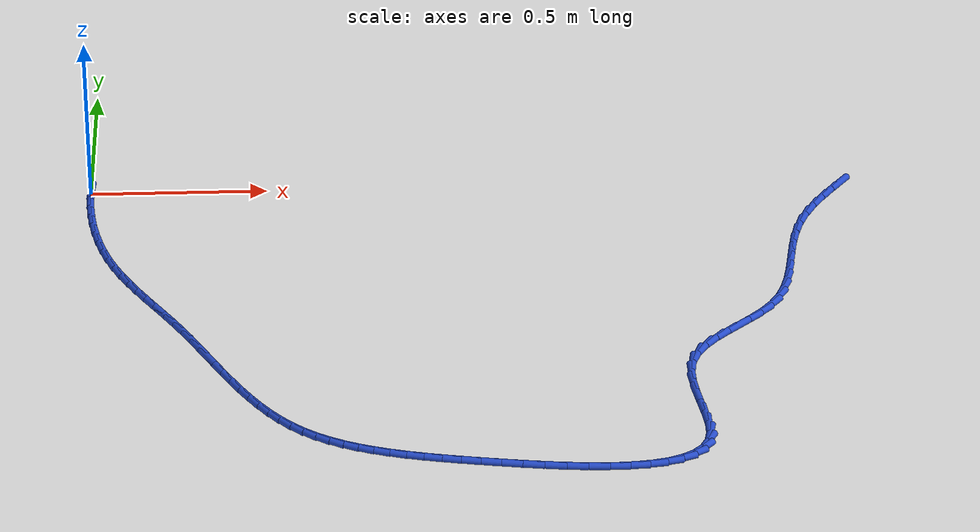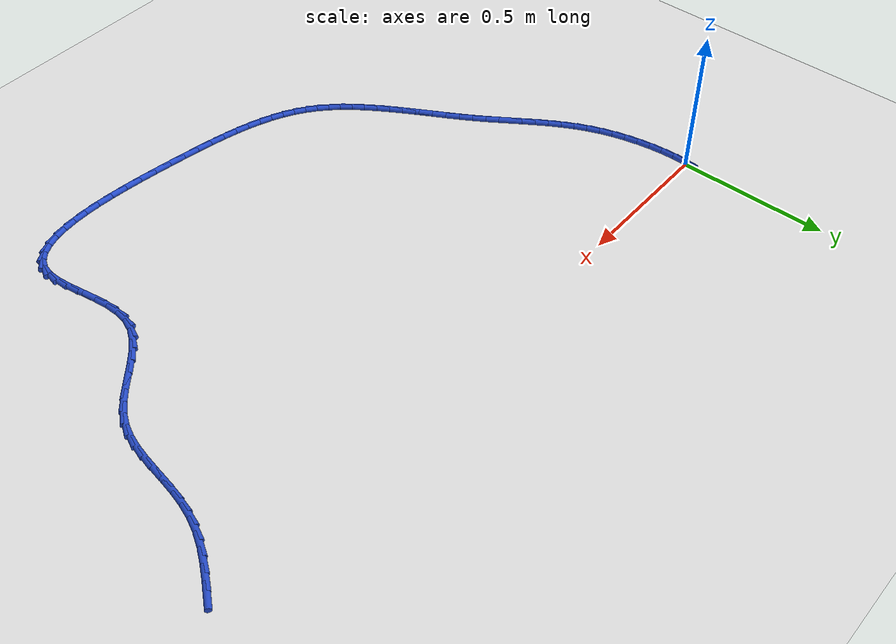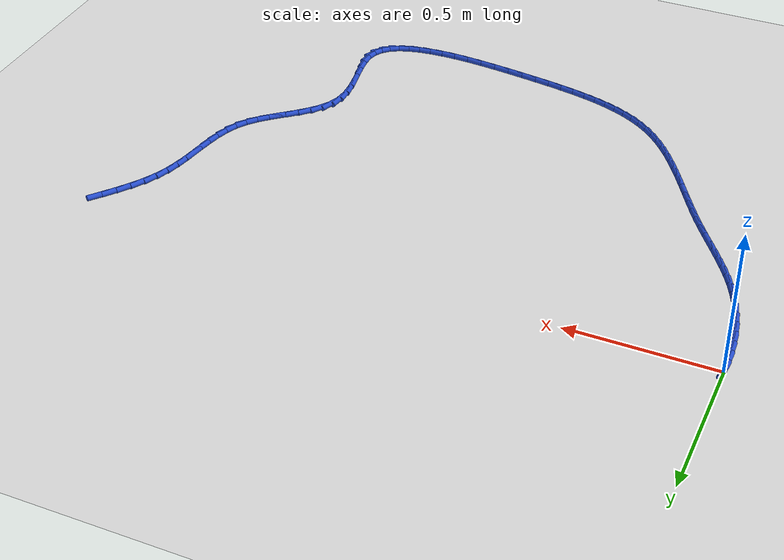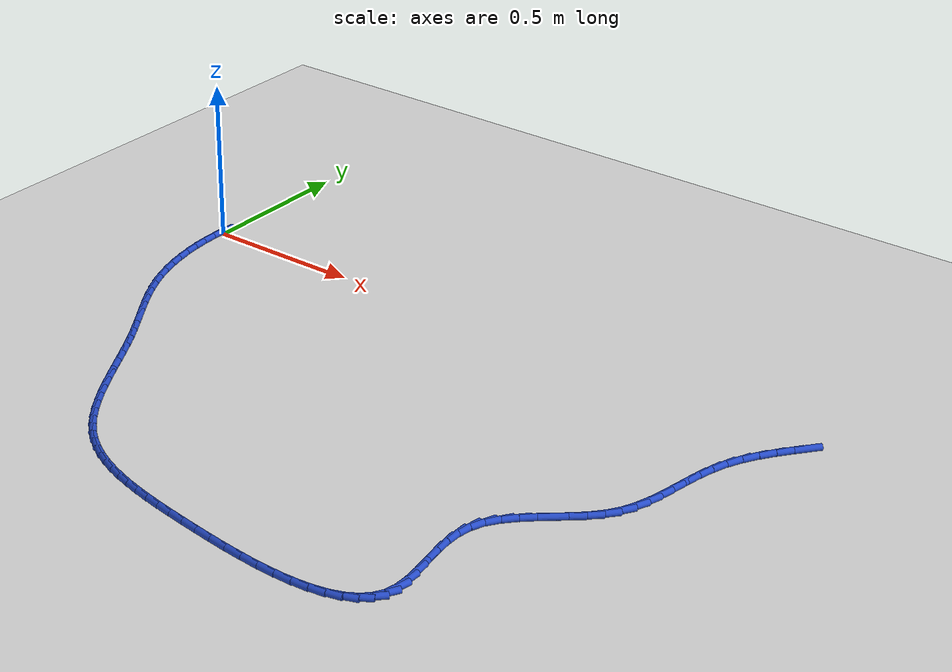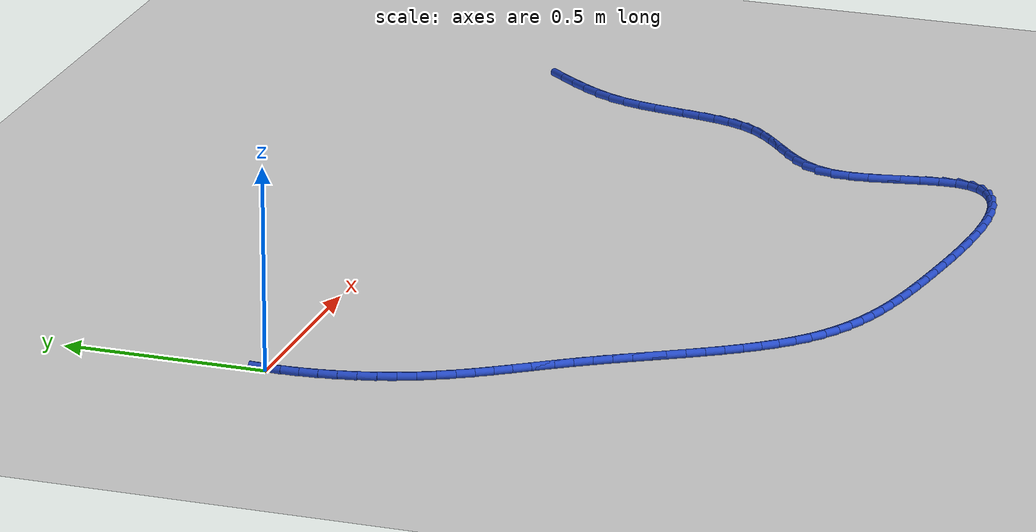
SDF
<sdf version="1.6">
 <world name="default">
  <model name="ground_plane">
   <static>1</static>
   <link name="link">
    <collision name="collision">
     <geometry><plane><normal>0 0 1</normal><size>100 100</size></plane></geometry>
     <surface><friction><ode><mu>100</mu><mu2>50</mu2></ode></friction></surface>
    </collision>
    <visual name="visual">
     <cast_shadows>0</cast_shadows>
     <geometry><plane><normal>0 0 1</normal><size>100 100</size></plane></geometry>
     <material>
      <script><uri>file://media/materials/scripts/gazebo.material</uri><name>Gazebo/WhiteGlow</name></script>
     </material>
    </visual>
   </link>
  </model>
  <model name="line">
   <link name="link_0">
    <pose>-2.6020852139652106e-17 6.938893903907228e-17 0.01 0 1.57 1.5015367218209097</pose>
    <collision name="collision">
     <geometry><cylinder><radius>0.01</radius><length>0.08</length></cylinder></geometry>
    </collision>
    <visual name="visual">
     <material>
      <script><name>Gazebo/Blue</name><uri>file://media/materials/scripts/gazebo.material</uri></script>
     </material>
     <geometry><cylinder><radius>0.01</radius><length>0.08</length></cylinder></geometry>
    </visual>
   </link>
   <link name="link_86">
    <pose>2.1343376014340554 -0.019765236307156576 0.01 0 1.57 0.8953311883080695</pose>
    <collision name="collision">
     <geometry><cylinder><radius>0.01</radius><length>0.08</length></cylinder></geometry>
    </collision>
    <visual name="visual">
     <material>
      <script><name>Gazebo/Blue</name><uri>file://media/materials/scripts/gazebo.material</uri></script>
     </material>
     <geometry><cylinder><radius>0.01</radius><length>0.08</length></cylinder></geometry>
    </visual>
   </link>
   <link name="link_87">
    <pose>2.102696244471729 -0.059258267065705715 0.01 0 1.57 0.9284520968561958</pose>
    <collision name="collision">
     <geometry><cylinder><radius>0.01</radius><length>0.08</length></cylinder></geometry>
    </collision>
    <visual name="visual">
     <material>
      <script><name>Gazebo/Blue</name><uri>file://media/materials/scripts/gazebo.material</uri></script>
     </material>
     <geometry><cylinder><radius>0.01</radius><length>0.08</length></cylinder></geometry>
    </visual>
   </link>
   <link name="link_88">
    <pose>2.072326360410331 -0.09984919184461644 0.01 0 1.57 0.9825147290813121</pose>
    <collision name="collision">
     <geometry><cylinder><radius>0.01</radius><length>0.08</length></cylinder></geometry>
    </collision>
    <visual name="visual">
     <material>
      <script><name>Gazebo/Blue</name><uri>file://media/materials/scripts/gazebo.material</uri></script>
     </material>
     <geometry><cylinder><radius>0.01</radius><length>0.08</length></cylinder></geometry>
    </visual>
   </link>
   <link name="link_89">
    <pose>2.0445008241018092 -0.141562276583515 0.01 0 1.57 1.0601838977906153</pose>
    <collision name="collision">
     <geometry><cylinder><radius>0.01</radius><length>0.08</length></cylinder></geometry>
    </collision>
    <visual name="visual">
     <material>
      <script><name>Gazebo/Blue</name><uri>file://media/materials/scripts/gazebo.material</uri></script>
     </material>
     <geometry><cylinder><radius>0.01</radius><length>0.08</length></cylinder></geometry>
    </visual>
   </link>
   <link name="link_90">
    <pose>2.020492510398112 -0.18442178722202515 0.01 0 1.57 1.1635988617889739</pose>
    <collision name="collision">
     <geometry><cylinder><radius>0.01</radius><length>0.08</length></cylinder></geometry>
    </collision>
    <visual name="visual">
     <material>
      <script><name>Gazebo/Blue</name><uri>file://media/materials/scripts/gazebo.material</uri></script>
     </material>
     <geometry><cylinder><radius>0.01</radius><length>0.08</length></cylinder></geometry>
    </visual>
   </link>
   <link name="link_91">
    <pose>2.0015073615350767 -0.22843988006481394 0.01 0 1.57 1.2675174536357787</pose>
    <collision name="collision">
     <geometry><cylinder><radius>0.01</radius><length>0.08</length></cylinder></geometry>
    </collision>
    <visual name="visual">
     <material>
      <script><name>Gazebo/Blue</name><uri>file://media/materials/scripts/gazebo.material</uri></script>
     </material>
     <geometry><cylinder><radius>0.01</radius><length>0.08</length></cylinder></geometry>
    </visual>
   </link>
   <link name="link_92">
    <pose>1.9874405190904356 -0.2733915577178625 0.01 0 1.57 1.3448038288837534</pose>
    <collision name="collision">
     <geometry><cylinder><radius>0.01</radius><length>0.08</length></cylinder></geometry>
    </collision>
    <visual name="visual">
     <material>
      <script><name>Gazebo/Blue</name><uri>file://media/materials/scripts/gazebo.material</uri></script>
     </material>
     <geometry><cylinder><radius>0.01</radius><length>0.08</length></cylinder></geometry>
    </visual>
   </link>
   <link name="link_93">
    <pose>1.976992020223422 -0.31883560117373483 0.01 0 1.57 1.3929985538239018</pose>
    <collision name="collision">
     <geometry><cylinder><radius>0.01</radius><length>0.08</length></cylinder></geometry>
    </collision>
    <visual name="visual">
     <material>
      <script><name>Gazebo/Blue</name><uri>file://media/materials/scripts/gazebo.material</uri></script>
     </material>
     <geometry><cylinder><radius>0.01</radius><length>0.08</length></cylinder></geometry>
    </visual>
   </link>
   <link name="link_94">
    <pose>1.9688181706790948 -0.3643228794159841 0.01 0 1.57 1.4114950180663197</pose>
    <collision name="collision">
     <geometry><cylinder><radius>0.01</radius><length>0.08</length></cylinder></geometry>
    </collision>
    <visual name="visual">
     <material>
      <script><name>Gazebo/Blue</name><uri>file://media/materials/scripts/gazebo.material</uri></script>
     </material>
     <geometry><cylinder><radius>0.01</radius><length>0.08</length></cylinder></geometry>
    </visual>
   </link>
   <link name="link_95">
    <pose>1.9615752762025158 -0.40940426142816094 0.01 0 1.57 1.3993936607827153</pose>
    <collision name="collision">
     <geometry><cylinder><radius>0.01</radius><length>0.08</length></cylinder></geometry>
    </collision>
    <visual name="visual">
     <material>
      <script><name>Gazebo/Blue</name><uri>file://media/materials/scripts/gazebo.material</uri></script>
     </material>
     <geometry><cylinder><radius>0.01</radius><length>0.08</length></cylinder></geometry>
    </visual>
   </link>
   <link name="link_96">
    <pose>1.9539196425387455 -0.45363061619381856 0.01 0 1.57 1.3549309332881538</pose>
    <collision name="collision">
     <geometry><cylinder><radius>0.01</radius><length>0.08</length></cylinder></geometry>
    </collision>
    <visual name="visual">
     <material>
      <script><name>Gazebo/Blue</name><uri>file://media/materials/scripts/gazebo.material</uri></script>
     </material>
     <geometry><cylinder><radius>0.01</radius><length>0.08</length></cylinder></geometry>
    </visual>
   </link>
   <link name="link_97">
    <pose>1.944507575432843 -0.4965528126965091 0.01 0 1.57 1.2757439687613161</pose>
    <collision name="collision">
     <geometry><cylinder><radius>0.01</radius><length>0.08</length></cylinder></geometry>
    </collision>
    <visual name="visual">
     <material>
      <script><name>Gazebo/Blue</name><uri>file://media/materials/scripts/gazebo.material</uri></script>
     </material>
     <geometry><cylinder><radius>0.01</radius><length>0.08</length></cylinder></geometry>
    </visual>
   </link>
   <link name="link_98">
    <pose>1.9319953806298693 -0.5377217199197849 0.01 0 1.57 1.1603654402708465</pose>
    <collision name="collision">
     <geometry><cylinder><radius>0.01</radius><length>0.08</length></cylinder></geometry>
    </collision>
    <visual name="visual">
     <material>
      <script><name>Gazebo/Blue</name><uri>file://media/materials/scripts/gazebo.material</uri></script>
     </material>
     <geometry><cylinder><radius>0.01</radius><length>0.08</length></cylinder></geometry>
    </visual>
   </link>
   <link name="link_99">
    <pose>1.9150393638748846 -0.576688206847199 0.01 0 1.57 1.011336479502829</pose>
    <collision name="collision">
     <geometry><cylinder><radius>0.01</radius><length>0.08</length></cylinder></geometry>
    </collision>
    <visual name="visual">
     <material>
      <script><name>Gazebo/Blue</name><uri>file://media/materials/scripts/gazebo.material</uri></script>
     </material>
     <geometry><cylinder><radius>0.01</radius><length>0.08</length></cylinder></geometry>
    </visual>
   </link>
   <link name="link_100">
    <pose>1.8922984054253866 -0.6130041693543725 0.01 0 1.57 0.8590803211666804</pose>
    <collision name="collision">
     <geometry><cylinder><radius>0.01</radius><length>0.08</length></cylinder></geometry>
    </collision>
    <visual name="visual">
     <material>
      <script><name>Gazebo/Blue</name><uri>file://media/materials/scripts/gazebo.material</uri></script>
     </material>
     <geometry><cylinder><radius>0.01</radius><length>0.08</length></cylinder></geometry>
    </visual>
   </link>
   <link name="link_101">
    <pose>1.863336505899754 -0.6465825273725457 0.01 0 1.57 0.7586334285078412</pose>
    <collision name="collision">
     <geometry><cylinder><radius>0.01</radius><length>0.08</length></cylinder></geometry>
    </collision>
    <visual name="visual">
     <material>
      <script><name>Gazebo/Blue</name><uri>file://media/materials/scripts/gazebo.material</uri></script>
     </material>
     <geometry><cylinder><radius>0.01</radius><length>0.08</length></cylinder></geometry>
    </visual>
   </link>
   <link name="link_102">
    <pose>1.829951072047174 -0.6782270363218417 0.01 0 1.57 0.7097951012265357</pose>
    <collision name="collision">
     <geometry><cylinder><radius>0.01</radius><length>0.08</length></cylinder></geometry>
    </collision>
    <visual name="visual">
     <material>
      <script><name>Gazebo/Blue</name><uri>file://media/materials/scripts/gazebo.material</uri></script>
     </material>
     <geometry><cylinder><radius>0.01</radius><length>0.08</length></cylinder></geometry>
    </visual>
   </link>
   <link name="link_103">
    <pose>1.794277914717638 -0.7088764303790102 0.01 0 1.57 0.7067859229128425</pose>
    <collision name="collision">
     <geometry><cylinder><radius>0.01</radius><length>0.08</length></cylinder></geometry>
    </collision>
    <visual name="visual">
     <material>
      <script><name>Gazebo/Blue</name><uri>file://media/materials/scripts/gazebo.material</uri></script>
     </material>
     <geometry><cylinder><radius>0.01</radius><length>0.08</length></cylinder></geometry>
    </visual>
   </link>
   <link name="link_104">
    <pose>1.7584528447611365 -0.7394694437208021 0.01 0 1.57 0.7491933796678254</pose>
    <collision name="collision">
     <geometry><cylinder><radius>0.01</radius><length>0.08</length></cylinder></geometry>
    </collision>
    <visual name="visual">
     <material>
      <script><name>Gazebo/Blue</name><uri>file://media/materials/scripts/gazebo.material</uri></script>
     </material>
     <geometry><cylinder><radius>0.01</radius><length>0.08</length></cylinder></geometry>
    </visual>
   </link>
   <link name="link_105">
    <pose>1.724611673027663 -0.7709448105239666 0.01 0 1.57 0.8420671908961838</pose>
    <collision name="collision">
     <geometry><cylinder><radius>0.01</radius><length>0.08</length></cylinder></geometry>
    </collision>
    <visual name="visual">
     <material>
      <script><name>Gazebo/Blue</name><uri>file://media/materials/scripts/gazebo.material</uri></script>
     </material>
     <geometry><cylinder><radius>0.01</radius><length>0.08</length></cylinder></geometry>
    </visual>
   </link>
   <link name="link_106">
    <pose>1.6948902103672083 -0.8042412649652545 0.01 0 1.57 0.9938488267173299</pose>
    <collision name="collision">
     <geometry><cylinder><radius>0.01</radius><length>0.08</length></cylinder></geometry>
    </collision>
    <visual name="visual">
     <material>
      <script><name>Gazebo/Blue</name><uri>file://media/materials/scripts/gazebo.material</uri></script>
     </material>
     <geometry><cylinder><radius>0.01</radius><length>0.08</length></cylinder></geometry>
    </visual>
   </link>
   <link name="link_107">
    <pose>1.671424267629764 -0.8402975412214159 0.01 0 1.57 1.208236156728852</pose>
    <collision name="collision">
     <geometry><cylinder><radius>0.01</radius><length>0.08</length></cylinder></geometry>
    </collision>
    <visual name="visual">
     <material>
      <script><name>Gazebo/Blue</name><uri>file://media/materials/scripts/gazebo.material</uri></script>
     </material>
     <geometry><cylinder><radius>0.01</radius><length>0.08</length></cylinder></geometry>
    </visual>
   </link>
   <link name="link_108">
    <pose>1.6563450074758224 -0.8800500443093544 0.01 0 1.57 1.438730580906716</pose>
    <collision name="collision">
     <geometry><cylinder><radius>0.01</radius><length>0.08</length></cylinder></geometry>
    </collision>
    <visual name="visual">
     <material>
      <script><name>Gazebo/Blue</name><uri>file://media/materials/scripts/gazebo.material</uri></script>
     </material>
     <geometry><cylinder><radius>0.01</radius><length>0.08</length></cylinder></geometry>
    </visual>
   </link>
   <link name="link_109">
    <pose>1.650532229117086 -0.9238081339203218 0.01 0 1.57 -1.5408060649136766</pose>
    <collision name="collision">
     <geometry><cylinder><radius>0.01</radius><length>0.08</length></cylinder></geometry>
    </collision>
    <visual name="visual">
     <material>
      <script><name>Gazebo/Blue</name><uri>file://media/materials/scripts/gazebo.material</uri></script>
     </material>
     <geometry><cylinder><radius>0.01</radius><length>0.08</length></cylinder></geometry>
    </visual>
   </link>
   <link name="link_110">
    <pose>1.6519302574589394 -0.9704102338283278 0.01 0 1.57 -1.4439127112153773</pose>
    <collision name="collision">
     <geometry><cylinder><radius>0.01</radius><length>0.08</length></cylinder></geometry>
    </collision>
    <visual name="visual">
     <material>
      <script><name>Gazebo/Blue</name><uri>file://media/materials/scripts/gazebo.material</uri></script>
     </material>
     <geometry><cylinder><radius>0.01</radius><length>0.08</length></cylinder></geometry>
    </visual>
   </link>
   <link name="link_111">
    <pose>1.6580629894529015 -1.0184840956932948 0.01 0 1.57 -1.3983364508978755</pose>
    <collision name="collision">
     <geometry><cylinder><radius>0.01</radius><length>0.08</length></cylinder></geometry>
    </collision>
    <visual name="visual">
     <material>
      <script><name>Gazebo/Blue</name><uri>file://media/materials/scripts/gazebo.material</uri></script>
     </material>
     <geometry><cylinder><radius>0.01</radius><length>0.08</length></cylinder></geometry>
    </visual>
   </link>
   <link name="link_112">
    <pose>1.6664543220504917 -1.0666574711751486 0.01 0 1.57 -1.398249630607257</pose>
    <collision name="collision">
     <geometry><cylinder><radius>0.01</radius><length>0.08</length></cylinder></geometry>
    </collision>
    <visual name="visual">
     <material>
      <script><name>Gazebo/Blue</name><uri>file://media/materials/scripts/gazebo.material</uri></script>
     </material>
     <geometry><cylinder><radius>0.01</radius><length>0.08</length></cylinder></geometry>
    </visual>
   </link>
   <link name="link_113">
    <pose>1.6746281522032302 -1.1135581119338138 0.01 0 1.57 -1.4475924613147018</pose>
    <collision name="collision">
     <geometry><cylinder><radius>0.01</radius><length>0.08</length></cylinder></geometry>
    </collision>
    <visual name="visual">
     <material>
      <script><name>Gazebo/Blue</name><uri>file://media/materials/scripts/gazebo.material</uri></script>
     </material>
     <geometry><cylinder><radius>0.01</radius><length>0.08</length></cylinder></geometry>
    </visual>
   </link>
   <link name="link_114">
    <pose>1.6801083768626348 -1.1578137696292146 0.01 0 1.57 -1.563079574858625</pose>
    <collision name="collision">
     <geometry><cylinder><radius>0.01</radius><length>0.08</length></cylinder></geometry>
    </collision>
    <visual name="visual">
     <material>
      <script><name>Gazebo/Blue</name><uri>file://media/materials/scripts/gazebo.material</uri></script>
     </material>
     <geometry><cylinder><radius>0.01</radius><length>0.08</length></cylinder></geometry>
    </visual>
   </link>
   <link name="link_115">
    <pose>1.680418892980226 -1.1980521959212769 0.01 0 1.57 1.3642914197493297</pose>
    <collision name="collision">
     <geometry><cylinder><radius>0.01</radius><length>0.08</length></cylinder></geometry>
    </collision>
    <visual name="visual">
     <material>
      <script><name>Gazebo/Blue</name><uri>file://media/materials/scripts/gazebo.material</uri></script>
     </material>
     <geometry><cylinder><radius>0.01</radius><length>0.08</length></cylinder></geometry>
    </visual>
   </link>
   <link name="link_116">
    <pose>1.6731147437970006 -1.2329183218089699 0.01 0 1.57 1.0642983695668267</pose>
    <collision name="collision">
     <geometry><cylinder><radius>0.01</radius><length>0.08</length></cylinder></geometry>
    </collision>
    <visual name="visual">
     <material>
      <script><name>Gazebo/Blue</name><uri>file://media/materials/scripts/gazebo.material</uri></script>
     </material>
     <geometry><cylinder><radius>0.01</radius><length>0.08</length></cylinder></geometry>
    </visual>
   </link>
   <link name="link_117">
    <pose>1.657093425538519 -1.2617975342288195 0.01 0 1.57 0.7699015739525611</pose>
    <collision name="collision">
     <geometry><cylinder><radius>0.01</radius><length>0.08</length></cylinder></geometry>
    </collision>
    <visual name="visual">
     <material>
      <script><name>Gazebo/Blue</name><uri>file://media/materials/scripts/gazebo.material</uri></script>
     </material>
     <geometry><cylinder><radius>0.01</radius><length>0.08</length></cylinder></geometry>
    </visual>
   </link>
   <link name="link_118">
    <pose>1.6330765534757845 -1.285081348297282 0.01 0 1.57 0.5274724385098474</pose>
    <collision name="collision">
     <geometry><cylinder><radius>0.01</radius><length>0.08</length></cylinder></geometry>
    </collision>
    <visual name="visual">
     <material>
      <script><name>Gazebo/Blue</name><uri>file://media/materials/scripts/gazebo.material</uri></script>
     </material>
     <geometry><cylinder><radius>0.01</radius><length>0.08</length></cylinder></geometry>
    </visual>
   </link>
   <link name="link_119">
    <pose>1.6019160700647395 -1.303233163613192 0.01 0 1.57 0.3455660124782833</pose>
    <collision name="collision">
     <geometry><cylinder><radius>0.01</radius><length>0.08</length></cylinder></geometry>
    </collision>
    <visual name="visual">
     <material>
      <script><name>Gazebo/Blue</name><uri>file://media/materials/scripts/gazebo.material</uri></script>
     </material>
     <geometry><cylinder><radius>0.01</radius><length>0.08</length></cylinder></geometry>
    </visual>
   </link>
   <link name="link_120">
    <pose>1.5644639177613289 -1.316716379775385 0.01 0 1.57 0.2130295983115131</pose>
    <collision name="collision">
     <geometry><cylinder><radius>0.01</radius><length>0.08</length></cylinder></geometry>
    </collision>
    <visual name="visual">
     <material>
      <script><name>Gazebo/Blue</name><uri>file://media/materials/scripts/gazebo.material</uri></script>
     </material>
     <geometry><cylinder><radius>0.01</radius><length>0.08</length></cylinder></geometry>
    </visual>
   </link>
   <link name="link_121">
    <pose>1.521572039021496 -1.3259943963826974 0.01 0 1.57 0.11607768304004415</pose>
    <collision name="collision">
     <geometry><cylinder><radius>0.01</radius><length>0.08</length></cylinder></geometry>
    </collision>
    <visual name="visual">
     <material>
      <script><name>Gazebo/Blue</name><uri>file://media/materials/scripts/gazebo.material</uri></script>
     </material>
     <geometry><cylinder><radius>0.01</radius><length>0.08</length></cylinder></geometry>
    </visual>
   </link>
   <link name="link_122">
    <pose>1.4740923763011873 -1.3315306130339646 0.01 0 1.57 0.044056099346701905</pose>
    <collision name="collision">
     <geometry><cylinder><radius>0.01</radius><length>0.08</length></cylinder></geometry>
    </collision>
    <visual name="visual">
     <material>
      <script><name>Gazebo/Blue</name><uri>file://media/materials/scripts/gazebo.material</uri></script>
     </material>
     <geometry><cylinder><radius>0.01</radius><length>0.08</length></cylinder></geometry>
    </visual>
   </link>
   <link name="link_123">
    <pose>1.4228768720563454 -1.3337884293280213 0.01 0 1.57 -0.010298907757420917</pose>
    <collision name="collision">
     <geometry><cylinder><radius>0.01</radius><length>0.08</length></cylinder></geometry>
    </collision>
    <visual name="visual">
     <material>
      <script><name>Gazebo/Blue</name><uri>file://media/materials/scripts/gazebo.material</uri></script>
     </material>
     <geometry><cylinder><radius>0.01</radius><length>0.08</length></cylinder></geometry>
    </visual>
   </link>
   <link name="link_124">
    <pose>1.368777468742915 -1.3332312448637043 0.01 0 1.57 -0.051774730634102574</pose>
    <collision name="collision">
     <geometry><cylinder><radius>0.01</radius><length>0.08</length></cylinder></geometry>
    </collision>
    <visual name="visual">
     <material>
      <script><name>Gazebo/Blue</name><uri>file://media/materials/scripts/gazebo.material</uri></script>
     </material>
     <geometry><cylinder><radius>0.01</radius><length>0.08</length></cylinder></geometry>
    </visual>
   </link>
   <link name="link_125">
    <pose>1.3126461088168402 -1.330322459239848 0.01 0 1.57 -0.08350579494485845</pose>
    <collision name="collision">
     <geometry><cylinder><radius>0.01</radius><length>0.08</length></cylinder></geometry>
    </collision>
    <visual name="visual">
     <material>
      <script><name>Gazebo/Blue</name><uri>file://media/materials/scripts/gazebo.material</uri></script>
     </material>
     <geometry><cylinder><radius>0.01</radius><length>0.08</length></cylinder></geometry>
    </visual>
   </link>
   <link name="link_126">
    <pose>1.2553347347340638 -1.325525472055289 0.01 0 1.57 -0.1075269150454504</pose>
    <collision name="collision">
     <geometry><cylinder><radius>0.01</radius><length>0.08</length></cylinder></geometry>
    </collision>
    <visual name="visual">
     <material>
      <script><name>Gazebo/Blue</name><uri>file://media/materials/scripts/gazebo.material</uri></script>
     </material>
     <geometry><cylinder><radius>0.01</radius><length>0.08</length></cylinder></geometry>
    </visual>
   </link>
   <link name="link_127">
    <pose>1.1976952889505328 -1.3193036829088625 0.01 0 1.57 -0.1251090370067884</pose>
    <collision name="collision">
     <geometry><cylinder><radius>0.01</radius><length>0.08</length></cylinder></geometry>
    </collision>
    <visual name="visual">
     <material>
      <script><name>Gazebo/Blue</name><uri>file://media/materials/scripts/gazebo.material</uri></script>
     </material>
     <geometry><cylinder><radius>0.01</radius><length>0.08</length></cylinder></geometry>
    </visual>
   </link>
   <link name="link_128">
    <pose>1.1405797139221898 -1.312120491399404 0.01 0 1.57 -0.1369423023924029</pose>
    <collision name="collision">
     <geometry><cylinder><radius>0.01</radius><length>0.08</length></cylinder></geometry>
    </collision>
    <visual name="visual">
     <material>
      <script><name>Gazebo/Blue</name><uri>file://media/materials/scripts/gazebo.material</uri></script>
     </material>
     <geometry><cylinder><radius>0.01</radius><length>0.08</length></cylinder></geometry>
    </visual>
   </link>
   <link name="link_129">
    <pose>1.0848399325651483 -1.3044392815281096 0.01 0 1.57 -0.145244804502595</pose>
    <collision name="collision">
     <geometry><cylinder><radius>0.01</radius><length>0.08</length></cylinder></geometry>
    </collision>
    <visual name="visual">
     <material>
      <script><name>Gazebo/Blue</name><uri>file://media/materials/scripts/gazebo.material</uri></script>
     </material>
     <geometry><cylinder><radius>0.01</radius><length>0.08</length></cylinder></geometry>
    </visual>
   </link>
   <link name="link_130">
    <pose>1.0311566559065553 -1.2965867676714085 0.01 0 1.57 -0.15716049957428263</pose>
    <collision name="collision">
     <geometry><cylinder><radius>0.01</radius><length>0.08</length></cylinder></geometry>
    </collision>
    <visual name="visual">
     <material>
      <script><name>Gazebo/Blue</name><uri>file://media/materials/scripts/gazebo.material</uri></script>
     </material>
     <geometry><cylinder><radius>0.01</radius><length>0.08</length></cylinder></geometry>
    </visual>
   </link>
   <link name="link_131">
    <pose>0.9796226077262568 -1.288420304297717 0.01 0 1.57 -0.17472861156729103</pose>
    <collision name="collision">
     <geometry><cylinder><radius>0.01</radius><length>0.08</length></cylinder></geometry>
    </collision>
    <visual name="visual">
     <material>
      <script><name>Gazebo/Blue</name><uri>file://media/materials/scripts/gazebo.material</uri></script>
     </material>
     <geometry><cylinder><radius>0.01</radius><length>0.08</length></cylinder></geometry>
    </visual>
   </link>
   <link name="link_132">
    <pose>0.9302043873472693 -1.2796965672234408 0.01 0 1.57 -0.19855671978430212</pose>
    <collision name="collision">
     <geometry><cylinder><radius>0.01</radius><length>0.08</length></cylinder></geometry>
    </collision>
    <visual name="visual">
     <material>
      <script><name>Gazebo/Blue</name><uri>file://media/materials/scripts/gazebo.material</uri></script>
     </material>
     <geometry><cylinder><radius>0.01</radius><length>0.08</length></cylinder></geometry>
    </visual>
   </link>
   <link name="link_133">
    <pose>0.8828685940926083 -1.2701722322649893 0.01 0 1.57 -0.2292600944357022</pose>
    <collision name="collision">
     <geometry><cylinder><radius>0.01</radius><length>0.08</length></cylinder></geometry>
    </collision>
    <visual name="visual">
     <material>
      <script><name>Gazebo/Blue</name><uri>file://media/materials/scripts/gazebo.material</uri></script>
     </material>
     <geometry><cylinder><radius>0.01</radius><length>0.08</length></cylinder></geometry>
    </visual>
   </link>
   <link name="link_134">
    <pose>0.8375818272852896 -1.259603975238769 0.01 0 1.57 -0.2674193128926979</pose>
    <collision name="collision">
     <geometry><cylinder><radius>0.01</radius><length>0.08</length></cylinder></geometry>
    </collision>
    <visual name="visual">
     <material>
      <script><name>Gazebo/Blue</name><uri>file://media/materials/scripts/gazebo.material</uri></script>
     </material>
     <geometry><cylinder><radius>0.01</radius><length>0.08</length></cylinder></geometry>
    </visual>
   </link>
   <link name="link_135">
    <pose>0.7943106862483288 -1.2477484719611878 0.01 0 1.57 -0.31351269658091646</pose>
    <collision name="collision">
     <geometry><cylinder><radius>0.01</radius><length>0.08</length></cylinder></geometry>
    </collision>
    <visual name="visual">
     <material>
      <script><name>Gazebo/Blue</name><uri>file://media/materials/scripts/gazebo.material</uri></script>
     </material>
     <geometry><cylinder><radius>0.01</radius><length>0.08</length></cylinder></geometry>
    </visual>
   </link>
   <link name="link_136">
    <pose>0.753021770304741 -1.234362398248652 0.01 0 1.57 -0.3678194690987158</pose>
    <collision name="collision">
     <geometry><cylinder><radius>0.01</radius><length>0.08</length></cylinder></geometry>
    </collision>
    <visual name="visual">
     <material>
      <script><name>Gazebo/Blue</name><uri>file://media/materials/scripts/gazebo.material</uri></script>
     </material>
     <geometry><cylinder><radius>0.01</radius><length>0.08</length></cylinder></geometry>
    </visual>
   </link>
   <link name="link_137">
    <pose>0.7136816787775435 -1.2192024299175706 0.01 0 1.57 -0.4302968421667871</pose>
    <collision name="collision">
     <geometry><cylinder><radius>0.01</radius><length>0.08</length></cylinder></geometry>
    </collision>
    <visual name="visual">
     <material>
      <script><name>Gazebo/Blue</name><uri>file://media/materials/scripts/gazebo.material</uri></script>
     </material>
     <geometry><cylinder><radius>0.01</radius><length>0.08</length></cylinder></geometry>
    </visual>
   </link>
   <link name="link_138">
    <pose>0.6762570109897513 -1.2020252427843499 0.01 0 1.57 -0.5004483129277782</pose>
    <collision name="collision">
     <geometry><cylinder><radius>0.01</radius><length>0.08</length></cylinder></geometry>
    </collision>
    <visual name="visual">
     <material>
      <script><name>Gazebo/Blue</name><uri>file://media/materials/scripts/gazebo.material</uri></script>
     </material>
     <geometry><cylinder><radius>0.01</radius><length>0.08</length></cylinder></geometry>
    </visual>
   </link>
   <link name="link_139">
    <pose>0.6407143662643802 -1.1825875126653977 0.01 0 1.57 -0.5772193841278737</pose>
    <collision name="collision">
     <geometry><cylinder><radius>0.01</radius><length>0.08</length></cylinder></geometry>
    </collision>
    <visual name="visual">
     <material>
      <script><name>Gazebo/Blue</name><uri>file://media/materials/scripts/gazebo.material</uri></script>
     </material>
     <geometry><cylinder><radius>0.01</radius><length>0.08</length></cylinder></geometry>
    </visual>
   </link>
   <link name="link_140">
    <pose>0.6070203439244458 -1.1606459153771216 0.01 0 1.57 -0.658971292353253</pose>
    <collision name="collision">
     <geometry><cylinder><radius>0.01</radius><length>0.08</length></cylinder></geometry>
    </collision>
    <visual name="visual">
     <material>
      <script><name>Gazebo/Blue</name><uri>file://media/materials/scripts/gazebo.material</uri></script>
     </material>
     <geometry><cylinder><radius>0.01</radius><length>0.08</length></cylinder></geometry>
    </visual>
   </link>
   <link name="link_141">
    <pose>0.5751415432929641 -1.1359571267359287 0.01 0 1.57 -0.7424625631610413</pose>
    <collision name="collision">
     <geometry><cylinder><radius>0.01</radius><length>0.08</length></cylinder></geometry>
    </collision>
    <visual name="visual">
     <material>
      <script><name>Gazebo/Blue</name><uri>file://media/materials/scripts/gazebo.material</uri></script>
     </material>
     <geometry><cylinder><radius>0.01</radius><length>0.08</length></cylinder></geometry>
    </visual>
   </link>
   <link name="link_142">
    <pose>0.545029905593256 -1.1083262242299714 0.01 0 1.57 -0.817674665891165</pose>
    <collision name="collision">
     <geometry><cylinder><radius>0.01</radius><length>0.08</length></cylinder></geometry>
    </collision>
    <visual name="visual">
     <material>
      <script><name>Gazebo/Blue</name><uri>file://media/materials/scripts/gazebo.material</uri></script>
     </material>
     <geometry><cylinder><radius>0.01</radius><length>0.08</length></cylinder></geometry>
    </visual>
   </link>
   <link name="link_143">
    <pose>0.516527324698003 -1.0779216664031561 0.01 0 1.57 -0.8809092983082751</pose>
    <collision name="collision">
     <geometry><cylinder><radius>0.01</radius><length>0.08</length></cylinder></geometry>
    </collision>
    <visual name="visual">
     <material>
      <script><name>Gazebo/Blue</name><uri>file://media/materials/scripts/gazebo.material</uri></script>
     </material>
     <geometry><cylinder><radius>0.01</radius><length>0.08</length></cylinder></geometry>
    </visual>
   </link>
   <link name="link_144">
    <pose>0.4894256918286741 -1.0450770226910289 0.01 0 1.57 -0.9328798017300278</pose>
    <collision name="collision">
     <geometry><cylinder><radius>0.01</radius><length>0.08</length></cylinder></geometry>
    </collision>
    <visual name="visual">
     <material>
      <script><name>Gazebo/Blue</name><uri>file://media/materials/scripts/gazebo.material</uri></script>
     </material>
     <geometry><cylinder><radius>0.01</radius><length>0.08</length></cylinder></geometry>
    </visual>
   </link>
   <link name="link_145">
    <pose>0.46351664742071846 -1.0101266906352977 0.01 0 1.57 -0.9744746639620135</pose>
    <collision name="collision">
     <geometry><cylinder><radius>0.01</radius><length>0.08</length></cylinder></geometry>
    </collision>
    <visual name="visual">
     <material>
      <script><name>Gazebo/Blue</name><uri>file://media/materials/scripts/gazebo.material</uri></script>
     </material>
     <geometry><cylinder><radius>0.01</radius><length>0.08</length></cylinder></geometry>
    </visual>
   </link>
   <link name="link_146">
    <pose>0.43859183190958523 -0.9734050677776696 0.01 0 1.57 -1.0065658117616545</pose>
    <collision name="collision">
     <geometry><cylinder><radius>0.01</radius><length>0.08</length></cylinder></geometry>
    </collision>
    <visual name="visual">
     <material>
      <script><name>Gazebo/Blue</name><uri>file://media/materials/scripts/gazebo.material</uri></script>
     </material>
     <geometry><cylinder><radius>0.01</radius><length>0.08</length></cylinder></geometry>
    </visual>
   </link>
   <link name="link_147">
    <pose>0.4144428857307231 -0.9352465516598514 0.01 0 1.57 -1.0299119441746574</pose>
    <collision name="collision">
     <geometry><cylinder><radius>0.01</radius><length>0.08</length></cylinder></geometry>
    </collision>
    <visual name="visual">
     <material>
      <script><name>Gazebo/Blue</name><uri>file://media/materials/scripts/gazebo.material</uri></script>
     </material>
     <geometry><cylinder><radius>0.01</radius><length>0.08</length></cylinder></geometry>
    </visual>
   </link>
   <link name="link_148">
    <pose>0.39086144931958205 -0.8959855398235517 0.01 0 1.57 -1.0451115500900259</pose>
    <collision name="collision">
     <geometry><cylinder><radius>0.01</radius><length>0.08</length></cylinder></geometry>
    </collision>
    <visual name="visual">
     <material>
      <script><name>Gazebo/Blue</name><uri>file://media/materials/scripts/gazebo.material</uri></script>
     </material>
     <geometry><cylinder><radius>0.01</radius><length>0.08</length></cylinder></geometry>
    </visual>
   </link>
   <link name="link_149">
    <pose>0.3676391631116105 -0.855956429810477 0.01 0 1.57 -1.0525842992045462</pose>
    <collision name="collision">
     <geometry><cylinder><radius>0.01</radius><length>0.08</length></cylinder></geometry>
    </collision>
    <visual name="visual">
     <material>
      <script><name>Gazebo/Blue</name><uri>file://media/materials/scripts/gazebo.material</uri></script>
     </material>
     <geometry><cylinder><radius>0.01</radius><length>0.08</length></cylinder></geometry>
    </visual>
   </link>
   <link name="link_150">
    <pose>0.3445676675422578 -0.815493619162335 0.01 0 1.57 -1.0525666753888965</pose>
    <collision name="collision">
     <geometry><cylinder><radius>0.01</radius><length>0.08</length></cylinder></geometry>
    </collision>
    <visual name="visual">
     <material>
      <script><name>Gazebo/Blue</name><uri>file://media/materials/scripts/gazebo.material</uri></script>
     </material>
     <geometry><cylinder><radius>0.01</radius><length>0.08</length></cylinder></geometry>
    </visual>
   </link>
   <link name="link_151">
    <pose>0.321438603046973 -0.7749315054208331 0.01 0 1.57 -1.0451137915121125</pose>
    <collision name="collision">
     <geometry><cylinder><radius>0.01</radius><length>0.08</length></cylinder></geometry>
    </collision>
    <visual name="visual">
     <material>
      <script><name>Gazebo/Blue</name><uri>file://media/materials/scripts/gazebo.material</uri></script>
     </material>
     <geometry><cylinder><radius>0.01</radius><length>0.08</length></cylinder></geometry>
    </visual>
   </link>
   <link name="link_152">
    <pose>0.29804361006120506 -0.7346044861276783 0.01 0 1.57 -1.030103806823787</pose>
    <collision name="collision">
     <geometry><cylinder><radius>0.01</radius><length>0.08</length></cylinder></geometry>
    </collision>
    <visual name="visual">
     <material>
      <script><name>Gazebo/Blue</name><uri>file://media/materials/scripts/gazebo.material</uri></script>
     </material>
     <geometry><cylinder><radius>0.01</radius><length>0.08</length></cylinder></geometry>
    </visual>
   </link>
   <link name="link_153">
    <pose>0.27417432902040284 -0.6948469588245774 0.01 0 1.57 -1.0075431371291421</pose>
    <collision name="collision">
     <geometry><cylinder><radius>0.01</radius><length>0.08</length></cylinder></geometry>
    </collision>
    <visual name="visual">
     <material>
      <script><name>Gazebo/Blue</name><uri>file://media/materials/scripts/gazebo.material</uri></script>
     </material>
     <geometry><cylinder><radius>0.01</radius><length>0.08</length></cylinder></geometry>
    </visual>
   </link>
   <link name="link_154">
    <pose>0.24963195865112306 -0.6559827766857672 0.01 0 1.57 -0.9855354850826591</pose>
    <collision name="collision">
     <geometry><cylinder><radius>0.01</radius><length>0.08</length></cylinder></geometry>
    </collision>
    <visual name="visual">
     <material>
      <script><name>Gazebo/Blue</name><uri>file://media/materials/scripts/gazebo.material</uri></script>
     </material>
     <geometry><cylinder><radius>0.01</radius><length>0.08</length></cylinder></geometry>
    </visual>
   </link>
   <link name="link_155">
    <pose>0.2244863702802254 -0.6180394028095293 0.01 0 1.57 -0.9736377738243818</pose>
    <collision name="collision">
     <geometry><cylinder><radius>0.01</radius><length>0.08</length></cylinder></geometry>
    </collision>
    <visual name="visual">
     <material>
      <script><name>Gazebo/Blue</name><uri>file://media/materials/scripts/gazebo.material</uri></script>
     </material>
     <geometry><cylinder><radius>0.01</radius><length>0.08</length></cylinder></geometry>
    </visual>
   </link>
   <link name="link_156">
    <pose>0.19910641133114612 -0.5807144804767457 0.01 0 1.57 -0.9726579946046305</pose>
    <collision name="collision">
     <geometry><cylinder><radius>0.01</radius><length>0.08</length></cylinder></geometry>
    </collision>
    <visual name="visual">
     <material>
      <script><name>Gazebo/Blue</name><uri>file://media/materials/scripts/gazebo.material</uri></script>
     </material>
     <geometry><cylinder><radius>0.01</radius><length>0.08</length></cylinder></geometry>
    </visual>
   </link>
   <link name="link_157">
    <pose>0.17387656992516332 -0.5436883987056157 0.01 0 1.57 -0.9828435401445316</pose>
    <collision name="collision">
     <geometry><cylinder><radius>0.01</radius><length>0.08</length></cylinder></geometry>
    </collision>
    <visual name="visual">
     <material>
      <script><name>Gazebo/Blue</name><uri>file://media/materials/scripts/gazebo.material</uri></script>
     </material>
     <geometry><cylinder><radius>0.01</radius><length>0.08</length></cylinder></geometry>
    </visual>
   </link>
   <link name="link_158">
    <pose>0.1491813341835545 -0.5066415465143379 0.01 0 1.57 -1.0043667039743576</pose>
    <collision name="collision">
     <geometry><cylinder><radius>0.01</radius><length>0.08</length></cylinder></geometry>
    </collision>
    <visual name="visual">
     <material>
      <script><name>Gazebo/Blue</name><uri>file://media/materials/scripts/gazebo.material</uri></script>
     </material>
     <geometry><cylinder><radius>0.01</radius><length>0.08</length></cylinder></geometry>
    </visual>
   </link>
   <link name="link_159">
    <pose>0.12540519222759886 -0.4692543129211131 0.01 0 1.57 -1.0372808557009638</pose>
    <collision name="collision">
     <geometry><cylinder><radius>0.01</radius><length>0.08</length></cylinder></geometry>
    </collision>
    <visual name="visual">
     <material>
      <script><name>Gazebo/Blue</name><uri>file://media/materials/scripts/gazebo.material</uri></script>
     </material>
     <geometry><cylinder><radius>0.01</radius><length>0.08</length></cylinder></geometry>
    </visual>
   </link>
   <link name="link_160">
    <pose>0.1029326321785739 -0.43120708694414006 0.01 0 1.57 -1.0814340481024178</pose>
    <collision name="collision">
     <geometry><cylinder><radius>0.01</radius><length>0.08</length></cylinder></geometry>
    </collision>
    <visual name="visual">
     <material>
      <script><name>Gazebo/Blue</name><uri>file://media/materials/scripts/gazebo.material</uri></script>
     </material>
     <geometry><cylinder><radius>0.01</radius><length>0.08</length></cylinder></geometry>
    </visual>
   </link>
   <link name="link_161">
    <pose>0.08214814215775759 -0.3921802576016176 0.01 0 1.57 -1.1363212224787107</pose>
    <collision name="collision">
     <geometry><cylinder><radius>0.01</radius><length>0.08</length></cylinder></geometry>
    </collision>
    <visual name="visual">
     <material>
      <script><name>Gazebo/Blue</name><uri>file://media/materials/scripts/gazebo.material</uri></script>
     </material>
     <geometry><cylinder><radius>0.01</radius><length>0.08</length></cylinder></geometry>
    </visual>
   </link>
   <link name="link_162">
    <pose>0.063435461970547 -0.35185542624995464 0.01 0 1.57 -1.1972189331132375</pose>
    <collision name="collision">
     <geometry><cylinder><radius>0.01</radius><length>0.08</length></cylinder></geometry>
    </collision>
    <visual name="visual">
     <material>
      <script><name>Gazebo/Blue</name><uri>file://media/materials/scripts/gazebo.material</uri></script>
     </material>
     <geometry><cylinder><radius>0.01</radius><length>0.08</length></cylinder></geometry>
    </visual>
   </link>
   <link name="link_163">
    <pose>0.04706629756921722 -0.3100956990408442 0.01 0 1.57 -1.2560877597378688</pose>
    <collision name="collision">
     <geometry><cylinder><radius>0.01</radius><length>0.08</length></cylinder></geometry>
    </collision>
    <visual name="visual">
     <material>
      <script><name>Gazebo/Blue</name><uri>file://media/materials/scripts/gazebo.material</uri></script>
     </material>
     <geometry><cylinder><radius>0.01</radius><length>0.08</length></cylinder></geometry>
    </visual>
   </link>
   <link name="link_164">
    <pose>0.0330821308431474 -0.2671371655612736 0.01 0 1.57 -1.3126236784866865</pose>
    <collision name="collision">
     <geometry><cylinder><radius>0.01</radius><length>0.08</length></cylinder></geometry>
    </collision>
    <visual name="visual">
     <material>
      <script><name>Gazebo/Blue</name><uri>file://media/materials/scripts/gazebo.material</uri></script>
     </material>
     <geometry><cylinder><radius>0.01</radius><length>0.08</length></cylinder></geometry>
    </visual>
   </link>
   <link name="link_165">
    <pose>0.02149613890542328 -0.2232617716504532 0.01 0 1.57 -1.3675193600664555</pose>
    <collision name="collision">
     <geometry><cylinder><radius>0.01</radius><length>0.08</length></cylinder></geometry>
    </collision>
    <visual name="visual">
     <material>
      <script><name>Gazebo/Blue</name><uri>file://media/materials/scripts/gazebo.material</uri></script>
     </material>
     <geometry><cylinder><radius>0.01</radius><length>0.08</length></cylinder></geometry>
    </visual>
   </link>
   <link name="link_166">
    <pose>0.012321498869130912 -0.17875146314759438 0.01 0 1.57 -1.4214569170556735</pose>
    <collision name="collision">
     <geometry><cylinder><radius>0.01</radius><length>0.08</length></cylinder></geometry>
    </collision>
    <visual name="visual">
     <material>
      <script><name>Gazebo/Blue</name><uri>file://media/materials/scripts/gazebo.material</uri></script>
     </material>
     <geometry><cylinder><radius>0.01</radius><length>0.08</length></cylinder></geometry>
    </visual>
   </link>
   <link name="link_167">
    <pose>0.005571387847356335 -0.13388818589190837 0.01 0 1.57 -1.4751180193832323</pose>
    <collision name="collision">
     <geometry><cylinder><radius>0.01</radius><length>0.08</length></cylinder></geometry>
    </collision>
    <visual name="visual">
     <material>
      <script><name>Gazebo/Blue</name><uri>file://media/materials/scripts/gazebo.material</uri></script>
     </material>
     <geometry><cylinder><radius>0.01</radius><length>0.08</length></cylinder></geometry>
    </visual>
   </link>
   <link name="link_168">
    <pose>0.0012589829531855492 -0.08895388572260568 0.01 0 1.57 -1.5291973271013595</pose>
    <collision name="collision">
     <geometry><cylinder><radius>0.01</radius><length>0.08</length></cylinder></geometry>
    </collision>
    <visual name="visual">
     <material>
      <script><name>Gazebo/Blue</name><uri>file://media/materials/scripts/gazebo.material</uri></script>
     </material>
     <geometry><cylinder><radius>0.01</radius><length>0.08</length></cylinder></geometry>
    </visual>
   </link>
   <link name="link_169">
    <pose>-0.0006025387002952208 -0.044230508478899325 0.01 0 1.57 1.5571744749880254</pose>
    <collision name="collision">
     <geometry><cylinder><radius>0.01</radius><length>0.08</length></cylinder></geometry>
    </collision>
    <visual name="visual">
     <material>
      <script><name>Gazebo/Blue</name><uri>file://media/materials/scripts/gazebo.material</uri></script>
     </material>
     <geometry><cylinder><radius>0.01</radius><length>0.08</length></cylinder></geometry>
    </visual>
   </link>
   <link name="link_170">
    <pose>-2.2551405187698492e-17 2.5673907444456745e-16 0.01 0 1.57 1.5000429911143325</pose>
    <collision name="collision">
     <geometry><cylinder><radius>0.01</radius><length>0.08</length></cylinder></geometry>
    </collision>
    <visual name="visual">
     <material>
      <script><name>Gazebo/Blue</name><uri>file://media/materials/scripts/gazebo.material</uri></script>
     </material>
     <geometry><cylinder><radius>0.01</radius><length>0.08</length></cylinder></geometry>
    </visual>
   </link>
  </model>
 </world>
</sdf>
